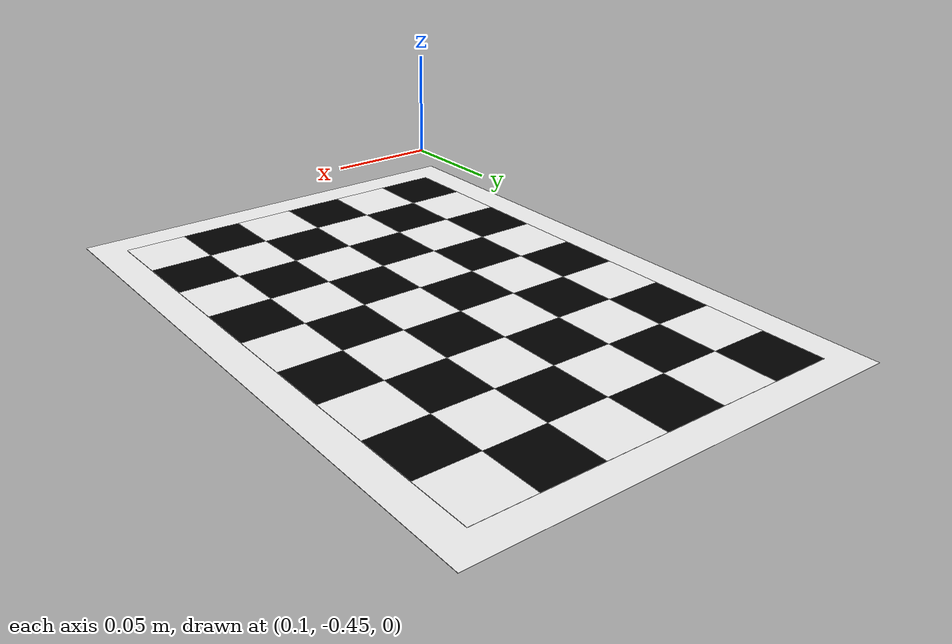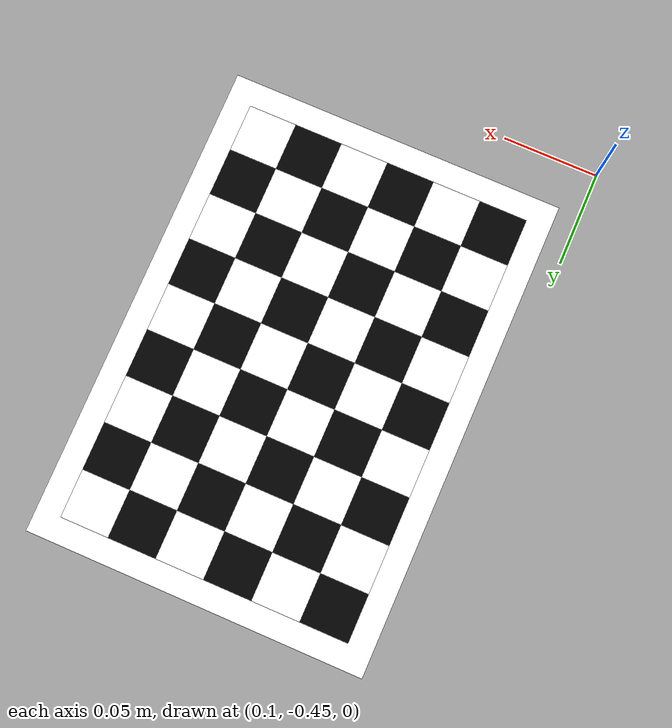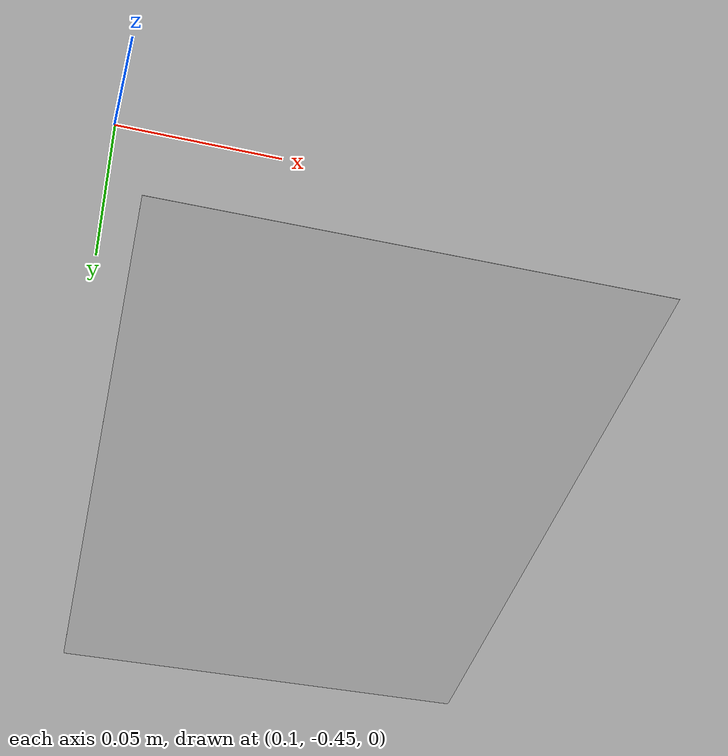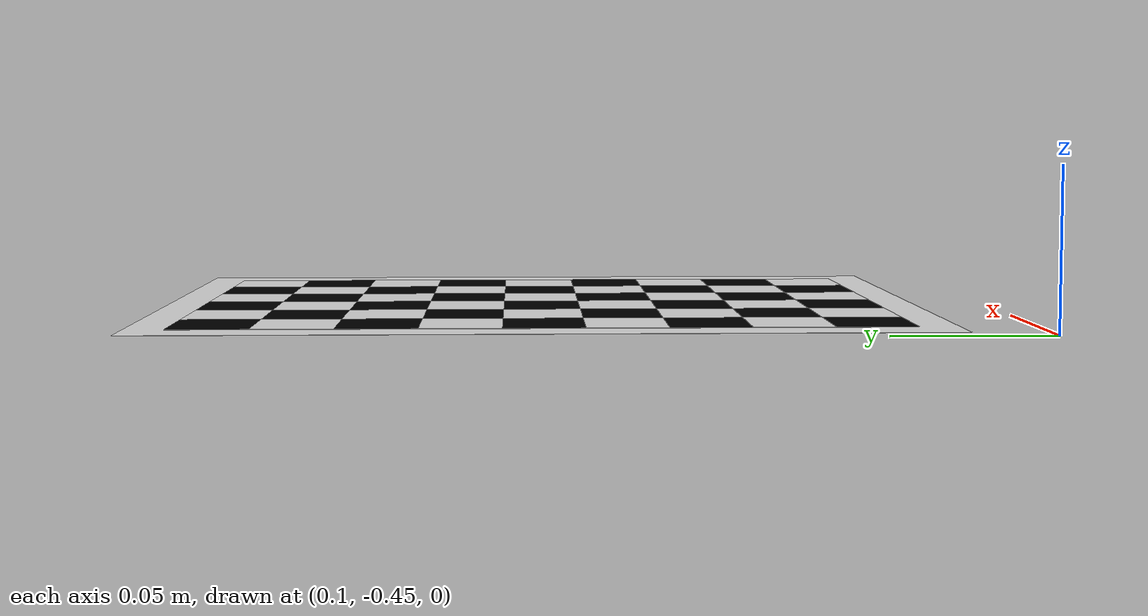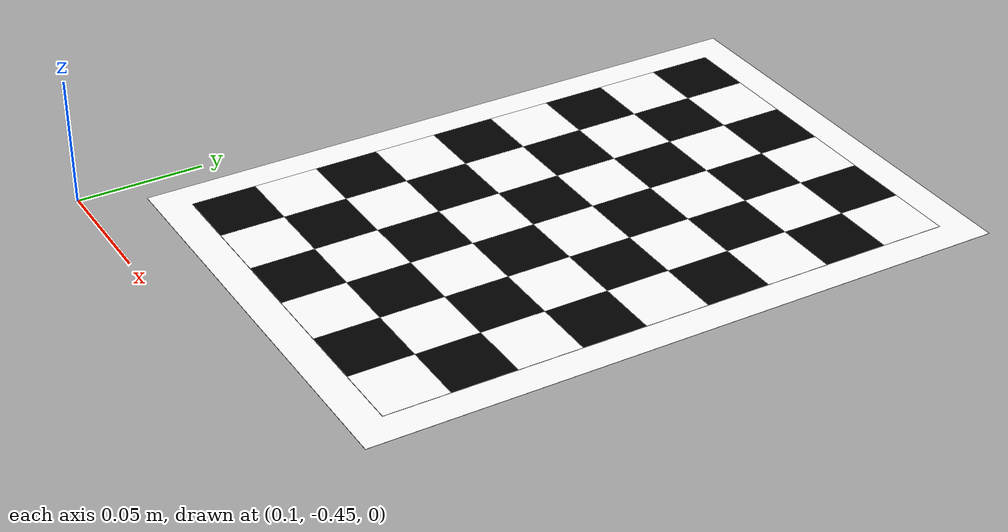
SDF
<?xml version="1.0"?>
<sdf version="1.4">
  <model name="calibration_checkerboard">
  <pose>0.2 -0.3 0.0 0 0 0</pose>
  <static>true</static>
  <link name="calibration_checkerboard">
      <visual name="checker_0_0">
        <pose>-0.06349999999999999 -0.1016 0 0 0 0</pose>
        <geometry>
          <box>
            <size>0.0254 0.0254 0.0002</size>
          </box>
        </geometry>
        <material>
          <ambient>0 0 0 1</ambient>
          <diffuse>0 0 0 1</diffuse>
          <specular>0 0 0 1</specular>
          <emissive>0 0 0 1</emissive>
        </material>
      </visual>
      <visual name="checker_0_1">
        <pose>-0.06349999999999999 -0.0762 0 0 0 0</pose>
        <geometry>
          <box>
            <size>0.0254 0.0254 0.0002</size>
          </box>
        </geometry>
        <material>
          <ambient>1 1 1 1</ambient>
          <diffuse>1 1 1 1</diffuse>
          <specular>1 1 1 1</specular>
          <emissive>1 1 1 1</emissive>
        </material>
      </visual>
      <visual name="checker_0_2">
        <pose>-0.06349999999999999 -0.0508 0 0 0 0</pose>
        <geometry>
          <box>
            <size>0.0254 0.0254 0.0002</size>
          </box>
        </geometry>
        <material>
          <ambient>0 0 0 1</ambient>
          <diffuse>0 0 0 1</diffuse>
          <specular>0 0 0 1</specular>
          <emissive>0 0 0 1</emissive>
        </material>
      </visual>
      <visual name="checker_0_3">
        <pose>-0.06349999999999999 -0.025400000000000006 0 0 0 0</pose>
        <geometry>
          <box>
            <size>0.0254 0.0254 0.0002</size>
          </box>
        </geometry>
        <material>
          <ambient>1 1 1 1</ambient>
          <diffuse>1 1 1 1</diffuse>
          <specular>1 1 1 1</specular>
          <emissive>1 1 1 1</emissive>
        </material>
      </visual>
      <visual name="checker_0_4">
        <pose>-0.06349999999999999 0.0 0 0 0 0</pose>
        <geometry>
          <box>
            <size>0.0254 0.0254 0.0002</size>
          </box>
        </geometry>
        <material>
          <ambient>0 0 0 1</ambient>
          <diffuse>0 0 0 1</diffuse>
          <specular>0 0 0 1</specular>
          <emissive>0 0 0 1</emissive>
        </material>
      </visual>
      <visual name="checker_0_5">
        <pose>-0.06349999999999999 0.025399999999999992 0 0 0 0</pose>
        <geometry>
          <box>
            <size>0.0254 0.0254 0.0002</size>
          </box>
        </geometry>
        <material>
          <ambient>1 1 1 1</ambient>
          <diffuse>1 1 1 1</diffuse>
          <specular>1 1 1 1</specular>
          <emissive>1 1 1 1</emissive>
        </material>
      </visual>
      <visual name="checker_0_6">
        <pose>-0.06349999999999999 0.05079999999999997 0 0 0 0</pose>
        <geometry>
          <box>
            <size>0.0254 0.0254 0.0002</size>
          </box>
        </geometry>
        <material>
          <ambient>0 0 0 1</ambient>
          <diffuse>0 0 0 1</diffuse>
          <specular>0 0 0 1</specular>
          <emissive>0 0 0 1</emissive>
        </material>
      </visual>
      <visual name="checker_0_7">
        <pose>-0.06349999999999999 0.07619999999999998 0 0 0 0</pose>
        <geometry>
          <box>
            <size>0.0254 0.0254 0.0002</size>
          </box>
        </geometry>
        <material>
          <ambient>1 1 1 1</ambient>
          <diffuse>1 1 1 1</diffuse>
          <specular>1 1 1 1</specular>
          <emissive>1 1 1 1</emissive>
        </material>
      </visual>
      <visual name="checker_0_8">
        <pose>-0.06349999999999999 0.10159999999999998 0 0 0 0</pose>
        <geometry>
          <box>
            <size>0.0254 0.0254 0.0002</size>
          </box>
        </geometry>
        <material>
          <ambient>0 0 0 1</ambient>
          <diffuse>0 0 0 1</diffuse>
          <specular>0 0 0 1</specular>
          <emissive>0 0 0 1</emissive>
        </material>
      </visual>
      <visual name="checker_1_0">
        <pose>-0.038099999999999995 -0.1016 0 0 0 0</pose>
        <geometry>
          <box>
            <size>0.0254 0.0254 0.0002</size>
          </box>
        </geometry>
        <material>
          <ambient>1 1 1 1</ambient>
          <diffuse>1 1 1 1</diffuse>
          <specular>1 1 1 1</specular>
          <emissive>1 1 1 1</emissive>
        </material>
      </visual>
      <visual name="checker_1_1">
        <pose>-0.038099999999999995 -0.0762 0 0 0 0</pose>
        <geometry>
          <box>
            <size>0.0254 0.0254 0.0002</size>
          </box>
        </geometry>
        <material>
          <ambient>0 0 0 1</ambient>
          <diffuse>0 0 0 1</diffuse>
          <specular>0 0 0 1</specular>
          <emissive>0 0 0 1</emissive>
        </material>
      </visual>
      <visual name="checker_1_2">
        <pose>-0.038099999999999995 -0.0508 0 0 0 0</pose>
        <geometry>
          <box>
            <size>0.0254 0.0254 0.0002</size>
          </box>
        </geometry>
        <material>
          <ambient>1 1 1 1</ambient>
          <diffuse>1 1 1 1</diffuse>
          <specular>1 1 1 1</specular>
          <emissive>1 1 1 1</emissive>
        </material>
      </visual>
      <visual name="checker_1_3">
        <pose>-0.038099999999999995 -0.025400000000000006 0 0 0 0</pose>
        <geometry>
          <box>
            <size>0.0254 0.0254 0.0002</size>
          </box>
        </geometry>
        <material>
          <ambient>0 0 0 1</ambient>
          <diffuse>0 0 0 1</diffuse>
          <specular>0 0 0 1</specular>
          <emissive>0 0 0 1</emissive>
        </material>
      </visual>
      <visual name="checker_1_4">
        <pose>-0.038099999999999995 0.0 0 0 0 0</pose>
        <geometry>
          <box>
            <size>0.0254 0.0254 0.0002</size>
          </box>
        </geometry>
        <material>
          <ambient>1 1 1 1</ambient>
          <diffuse>1 1 1 1</diffuse>
          <specular>1 1 1 1</specular>
          <emissive>1 1 1 1</emissive>
        </material>
      </visual>
      <visual name="checker_1_5">
        <pose>-0.038099999999999995 0.025399999999999992 0 0 0 0</pose>
        <geometry>
          <box>
            <size>0.0254 0.0254 0.0002</size>
          </box>
        </geometry>
        <material>
          <ambient>0 0 0 1</ambient>
          <diffuse>0 0 0 1</diffuse>
          <specular>0 0 0 1</specular>
          <emissive>0 0 0 1</emissive>
        </material>
      </visual>
      <visual name="checker_1_6">
        <pose>-0.038099999999999995 0.05079999999999997 0 0 0 0</pose>
        <geometry>
          <box>
            <size>0.0254 0.0254 0.0002</size>
          </box>
        </geometry>
        <material>
          <ambient>1 1 1 1</ambient>
          <diffuse>1 1 1 1</diffuse>
          <specular>1 1 1 1</specular>
          <emissive>1 1 1 1</emissive>
        </material>
      </visual>
      <visual name="checker_1_7">
        <pose>-0.038099999999999995 0.07619999999999998 0 0 0 0</pose>
        <geometry>
          <box>
            <size>0.0254 0.0254 0.0002</size>
          </box>
        </geometry>
        <material>
          <ambient>0 0 0 1</ambient>
          <diffuse>0 0 0 1</diffuse>
          <specular>0 0 0 1</specular>
          <emissive>0 0 0 1</emissive>
        </material>
      </visual>
      <visual name="checker_1_8">
        <pose>-0.038099999999999995 0.10159999999999998 0 0 0 0</pose>
        <geometry>
          <box>
            <size>0.0254 0.0254 0.0002</size>
          </box>
        </geometry>
        <material>
          <ambient>1 1 1 1</ambient>
          <diffuse>1 1 1 1</diffuse>
          <specular>1 1 1 1</specular>
          <emissive>1 1 1 1</emissive>
        </material>
      </visual>
      <visual name="checker_2_0">
        <pose>-0.012699999999999989 -0.1016 0 0 0 0</pose>
        <geometry>
          <box>
            <size>0.0254 0.0254 0.0002</size>
          </box>
        </geometry>
        <material>
          <ambient>0 0 0 1</ambient>
          <diffuse>0 0 0 1</diffuse>
          <specular>0 0 0 1</specular>
          <emissive>0 0 0 1</emissive>
        </material>
      </visual>
      <visual name="checker_2_1">
        <pose>-0.012699999999999989 -0.0762 0 0 0 0</pose>
        <geometry>
          <box>
            <size>0.0254 0.0254 0.0002</size>
          </box>
        </geometry>
        <material>
          <ambient>1 1 1 1</ambient>
          <diffuse>1 1 1 1</diffuse>
          <specular>1 1 1 1</specular>
          <emissive>1 1 1 1</emissive>
        </material>
      </visual>
      <visual name="checker_2_2">
        <pose>-0.012699999999999989 -0.0508 0 0 0 0</pose>
        <geometry>
          <box>
            <size>0.0254 0.0254 0.0002</size>
          </box>
        </geometry>
        <material>
          <ambient>0 0 0 1</ambient>
          <diffuse>0 0 0 1</diffuse>
          <specular>0 0 0 1</specular>
          <emissive>0 0 0 1</emissive>
        </material>
      </visual>
      <visual name="checker_2_3">
        <pose>-0.012699999999999989 -0.025400000000000006 0 0 0 0</pose>
        <geometry>
          <box>
            <size>0.0254 0.0254 0.0002</size>
          </box>
        </geometry>
        <material>
          <ambient>1 1 1 1</ambient>
          <diffuse>1 1 1 1</diffuse>
          <specular>1 1 1 1</specular>
          <emissive>1 1 1 1</emissive>
        </material>
      </visual>
      <visual name="checker_2_4">
        <pose>-0.012699999999999989 0.0 0 0 0 0</pose>
        <geometry>
          <box>
            <size>0.0254 0.0254 0.0002</size>
          </box>
        </geometry>
        <material>
          <ambient>0 0 0 1</ambient>
          <diffuse>0 0 0 1</diffuse>
          <specular>0 0 0 1</specular>
          <emissive>0 0 0 1</emissive>
        </material>
      </visual>
      <visual name="checker_2_5">
        <pose>-0.012699999999999989 0.025399999999999992 0 0 0 0</pose>
        <geometry>
          <box>
            <size>0.0254 0.0254 0.0002</size>
          </box>
        </geometry>
        <material>
          <ambient>1 1 1 1</ambient>
          <diffuse>1 1 1 1</diffuse>
          <specular>1 1 1 1</specular>
          <emissive>1 1 1 1</emissive>
        </material>
      </visual>
      <visual name="checker_2_6">
        <pose>-0.012699999999999989 0.05079999999999997 0 0 0 0</pose>
        <geometry>
          <box>
            <size>0.0254 0.0254 0.0002</size>
          </box>
        </geometry>
        <material>
          <ambient>0 0 0 1</ambient>
          <diffuse>0 0 0 1</diffuse>
          <specular>0 0 0 1</specular>
          <emissive>0 0 0 1</emissive>
        </material>
      </visual>
      <visual name="checker_2_7">
        <pose>-0.012699999999999989 0.07619999999999998 0 0 0 0</pose>
        <geometry>
          <box>
            <size>0.0254 0.0254 0.0002</size>
          </box>
        </geometry>
        <material>
          <ambient>1 1 1 1</ambient>
          <diffuse>1 1 1 1</diffuse>
          <specular>1 1 1 1</specular>
          <emissive>1 1 1 1</emissive>
        </material>
      </visual>
      <visual name="checker_2_8">
        <pose>-0.012699999999999989 0.10159999999999998 0 0 0 0</pose>
        <geometry>
          <box>
            <size>0.0254 0.0254 0.0002</size>
          </box>
        </geometry>
        <material>
          <ambient>0 0 0 1</ambient>
          <diffuse>0 0 0 1</diffuse>
          <specular>0 0 0 1</specular>
          <emissive>0 0 0 1</emissive>
        </material>
      </visual>
      <visual name="checker_3_0">
        <pose>0.012700000000000003 -0.1016 0 0 0 0</pose>
        <geometry>
          <box>
            <size>0.0254 0.0254 0.0002</size>
          </box>
        </geometry>
        <material>
          <ambient>1 1 1 1</ambient>
          <diffuse>1 1 1 1</diffuse>
          <specular>1 1 1 1</specular>
          <emissive>1 1 1 1</emissive>
        </material>
      </visual>
      <visual name="checker_3_1">
        <pose>0.012700000000000003 -0.0762 0 0 0 0</pose>
        <geometry>
          <box>
            <size>0.0254 0.0254 0.0002</size>
          </box>
        </geometry>
        <material>
          <ambient>0 0 0 1</ambient>
          <diffuse>0 0 0 1</diffuse>
          <specular>0 0 0 1</specular>
          <emissive>0 0 0 1</emissive>
        </material>
      </visual>
      <visual name="checker_3_2">
        <pose>0.012700000000000003 -0.0508 0 0 0 0</pose>
        <geometry>
          <box>
            <size>0.0254 0.0254 0.0002</size>
          </box>
        </geometry>
        <material>
          <ambient>1 1 1 1</ambient>
          <diffuse>1 1 1 1</diffuse>
          <specular>1 1 1 1</specular>
          <emissive>1 1 1 1</emissive>
        </material>
      </visual>
      <visual name="checker_3_3">
        <pose>0.012700000000000003 -0.025400000000000006 0 0 0 0</pose>
        <geometry>
          <box>
            <size>0.0254 0.0254 0.0002</size>
          </box>
        </geometry>
        <material>
          <ambient>0 0 0 1</ambient>
          <diffuse>0 0 0 1</diffuse>
          <specular>0 0 0 1</specular>
          <emissive>0 0 0 1</emissive>
        </material>
      </visual>
      <visual name="checker_3_4">
        <pose>0.012700000000000003 0.0 0 0 0 0</pose>
        <geometry>
          <box>
            <size>0.0254 0.0254 0.0002</size>
          </box>
        </geometry>
        <material>
          <ambient>1 1 1 1</ambient>
          <diffuse>1 1 1 1</diffuse>
          <specular>1 1 1 1</specular>
          <emissive>1 1 1 1</emissive>
        </material>
      </visual>
      <visual name="checker_3_5">
        <pose>0.012700000000000003 0.025399999999999992 0 0 0 0</pose>
        <geometry>
          <box>
            <size>0.0254 0.0254 0.0002</size>
          </box>
        </geometry>
        <material>
          <ambient>0 0 0 1</ambient>
          <diffuse>0 0 0 1</diffuse>
          <specular>0 0 0 1</specular>
          <emissive>0 0 0 1</emissive>
        </material>
      </visual>
      <visual name="checker_3_6">
        <pose>0.012700000000000003 0.05079999999999997 0 0 0 0</pose>
        <geometry>
          <box>
            <size>0.0254 0.0254 0.0002</size>
          </box>
        </geometry>
        <material>
          <ambient>1 1 1 1</ambient>
          <diffuse>1 1 1 1</diffuse>
          <specular>1 1 1 1</specular>
          <emissive>1 1 1 1</emissive>
        </material>
      </visual>
      <visual name="checker_3_7">
        <pose>0.012700000000000003 0.07619999999999998 0 0 0 0</pose>
        <geometry>
          <box>
            <size>0.0254 0.0254 0.0002</size>
          </box>
        </geometry>
        <material>
          <ambient>0 0 0 1</ambient>
          <diffuse>0 0 0 1</diffuse>
          <specular>0 0 0 1</specular>
          <emissive>0 0 0 1</emissive>
        </material>
      </visual>
      <visual name="checker_3_8">
        <pose>0.012700000000000003 0.10159999999999998 0 0 0 0</pose>
        <geometry>
          <box>
            <size>0.0254 0.0254 0.0002</size>
          </box>
        </geometry>
        <material>
          <ambient>1 1 1 1</ambient>
          <diffuse>1 1 1 1</diffuse>
          <specular>1 1 1 1</specular>
          <emissive>1 1 1 1</emissive>
        </material>
      </visual>
      <visual name="checker_4_0">
        <pose>0.03810000000000001 -0.1016 0 0 0 0</pose>
        <geometry>
          <box>
            <size>0.0254 0.0254 0.0002</size>
          </box>
        </geometry>
        <material>
          <ambient>0 0 0 1</ambient>
          <diffuse>0 0 0 1</diffuse>
          <specular>0 0 0 1</specular>
          <emissive>0 0 0 1</emissive>
        </material>
      </visual>
      <visual name="checker_4_1">
        <pose>0.03810000000000001 -0.0762 0 0 0 0</pose>
        <geometry>
          <box>
            <size>0.0254 0.0254 0.0002</size>
          </box>
        </geometry>
        <material>
          <ambient>1 1 1 1</ambient>
          <diffuse>1 1 1 1</diffuse>
          <specular>1 1 1 1</specular>
          <emissive>1 1 1 1</emissive>
        </material>
      </visual>
      <visual name="checker_4_2">
        <pose>0.03810000000000001 -0.0508 0 0 0 0</pose>
        <geometry>
          <box>
            <size>0.0254 0.0254 0.0002</size>
          </box>
        </geometry>
        <material>
          <ambient>0 0 0 1</ambient>
          <diffuse>0 0 0 1</diffuse>
          <specular>0 0 0 1</specular>
          <emissive>0 0 0 1</emissive>
        </material>
      </visual>
      <visual name="checker_4_3">
        <pose>0.03810000000000001 -0.025400000000000006 0 0 0 0</pose>
        <geometry>
          <box>
            <size>0.0254 0.0254 0.0002</size>
          </box>
        </geometry>
        <material>
          <ambient>1 1 1 1</ambient>
          <diffuse>1 1 1 1</diffuse>
          <specular>1 1 1 1</specular>
          <emissive>1 1 1 1</emissive>
        </material>
      </visual>
      <visual name="checker_4_4">
        <pose>0.03810000000000001 0.0 0 0 0 0</pose>
        <geometry>
          <box>
            <size>0.0254 0.0254 0.0002</size>
          </box>
        </geometry>
        <material>
          <ambient>0 0 0 1</ambient>
          <diffuse>0 0 0 1</diffuse>
          <specular>0 0 0 1</specular>
          <emissive>0 0 0 1</emissive>
        </material>
      </visual>
      <visual name="checker_4_5">
        <pose>0.03810000000000001 0.025399999999999992 0 0 0 0</pose>
        <geometry>
          <box>
            <size>0.0254 0.0254 0.0002</size>
          </box>
        </geometry>
        <material>
          <ambient>1 1 1 1</ambient>
          <diffuse>1 1 1 1</diffuse>
          <specular>1 1 1 1</specular>
          <emissive>1 1 1 1</emissive>
        </material>
      </visual>
      <visual name="checker_4_6">
        <pose>0.03810000000000001 0.05079999999999997 0 0 0 0</pose>
        <geometry>
          <box>
            <size>0.0254 0.0254 0.0002</size>
          </box>
        </geometry>
        <material>
          <ambient>0 0 0 1</ambient>
          <diffuse>0 0 0 1</diffuse>
          <specular>0 0 0 1</specular>
          <emissive>0 0 0 1</emissive>
        </material>
      </visual>
      <visual name="checker_4_7">
        <pose>0.03810000000000001 0.07619999999999998 0 0 0 0</pose>
        <geometry>
          <box>
            <size>0.0254 0.0254 0.0002</size>
          </box>
        </geometry>
        <material>
          <ambient>1 1 1 1</ambient>
          <diffuse>1 1 1 1</diffuse>
          <specular>1 1 1 1</specular>
          <emissive>1 1 1 1</emissive>
        </material>
      </visual>
      <visual name="checker_4_8">
        <pose>0.03810000000000001 0.10159999999999998 0 0 0 0</pose>
        <geometry>
          <box>
            <size>0.0254 0.0254 0.0002</size>
          </box>
        </geometry>
        <material>
          <ambient>0 0 0 1</ambient>
          <diffuse>0 0 0 1</diffuse>
          <specular>0 0 0 1</specular>
          <emissive>0 0 0 1</emissive>
        </material>
      </visual>
      <visual name="checker_5_0">
        <pose>0.0635 -0.1016 0 0 0 0</pose>
        <geometry>
          <box>
            <size>0.0254 0.0254 0.0002</size>
          </box>
        </geometry>
        <material>
          <ambient>1 1 1 1</ambient>
          <diffuse>1 1 1 1</diffuse>
          <specular>1 1 1 1</specular>
          <emissive>1 1 1 1</emissive>
        </material>
      </visual>
      <visual name="checker_5_1">
        <pose>0.0635 -0.0762 0 0 0 0</pose>
        <geometry>
          <box>
            <size>0.0254 0.0254 0.0002</size>
          </box>
        </geometry>
        <material>
          <ambient>0 0 0 1</ambient>
          <diffuse>0 0 0 1</diffuse>
          <specular>0 0 0 1</specular>
          <emissive>0 0 0 1</emissive>
        </material>
      </visual>
      <visual name="checker_5_2">
        <pose>0.0635 -0.0508 0 0 0 0</pose>
        <geometry>
          <box>
            <size>0.0254 0.0254 0.0002</size>
          </box>
        </geometry>
        <material>
          <ambient>1 1 1 1</ambient>
          <diffuse>1 1 1 1</diffuse>
          <specular>1 1 1 1</specular>
          <emissive>1 1 1 1</emissive>
        </material>
      </visual>
      <visual name="checker_5_3">
        <pose>0.0635 -0.025400000000000006 0 0 0 0</pose>
        <geometry>
          <box>
            <size>0.0254 0.0254 0.0002</size>
          </box>
        </geometry>
        <material>
          <ambient>0 0 0 1</ambient>
          <diffuse>0 0 0 1</diffuse>
          <specular>0 0 0 1</specular>
          <emissive>0 0 0 1</emissive>
        </material>
      </visual>
      <visual name="checker_5_4">
        <pose>0.0635 0.0 0 0 0 0</pose>
        <geometry>
          <box>
            <size>0.0254 0.0254 0.0002</size>
          </box>
        </geometry>
        <material>
          <ambient>1 1 1 1</ambient>
          <diffuse>1 1 1 1</diffuse>
          <specular>1 1 1 1</specular>
          <emissive>1 1 1 1</emissive>
        </material>
      </visual>
      <visual name="checker_5_5">
        <pose>0.0635 0.025399999999999992 0 0 0 0</pose>
        <geometry>
          <box>
            <size>0.0254 0.0254 0.0002</size>
          </box>
        </geometry>
        <material>
          <ambient>0 0 0 1</ambient>
          <diffuse>0 0 0 1</diffuse>
          <specular>0 0 0 1</specular>
          <emissive>0 0 0 1</emissive>
        </material>
      </visual>
      <visual name="checker_5_6">
        <pose>0.0635 0.05079999999999997 0 0 0 0</pose>
        <geometry>
          <box>
            <size>0.0254 0.0254 0.0002</size>
          </box>
        </geometry>
        <material>
          <ambient>1 1 1 1</ambient>
          <diffuse>1 1 1 1</diffuse>
          <specular>1 1 1 1</specular>
          <emissive>1 1 1 1</emissive>
        </material>
      </visual>
      <visual name="checker_5_7">
        <pose>0.0635 0.07619999999999998 0 0 0 0</pose>
        <geometry>
          <box>
            <size>0.0254 0.0254 0.0002</size>
          </box>
        </geometry>
        <material>
          <ambient>0 0 0 1</ambient>
          <diffuse>0 0 0 1</diffuse>
          <specular>0 0 0 1</specular>
          <emissive>0 0 0 1</emissive>
        </material>
      </visual>
      <visual name="checker_5_8">
        <pose>0.0635 0.10159999999999998 0 0 0 0</pose>
        <geometry>
          <box>
            <size>0.0254 0.0254 0.0002</size>
          </box>
        </geometry>
        <material>
          <ambient>1 1 1 1</ambient>
          <diffuse>1 1 1 1</diffuse>
          <specular>1 1 1 1</specular>
          <emissive>1 1 1 1</emissive>
        </material>
      </visual>
      <visual name="checker_backdrop">
        <pose>0.0 0.0 -0.0001 0 0 0</pose>
        <geometry>
          <box>
            <size>0.17779999999999999 0.254 0.0001</size>
          </box>
        </geometry>
        <material>
          <ambient>1 1 1 1</ambient>
          <diffuse>1 1 1 1</diffuse>
          <specular>1 1 1 1</specular>
          <emissive>1 1 1 1</emissive>
        </material>
      </visual>    <collision name="collision">
        <pose>0.0 0.0 -0.0001 0 0 0</pose>
        <geometry>
          <box>
            <size>0.17779999999999999 0.254 0.0001</size>
          </box>
        </geometry>
    </collision>
    </link>
  </model>
</sdf>
